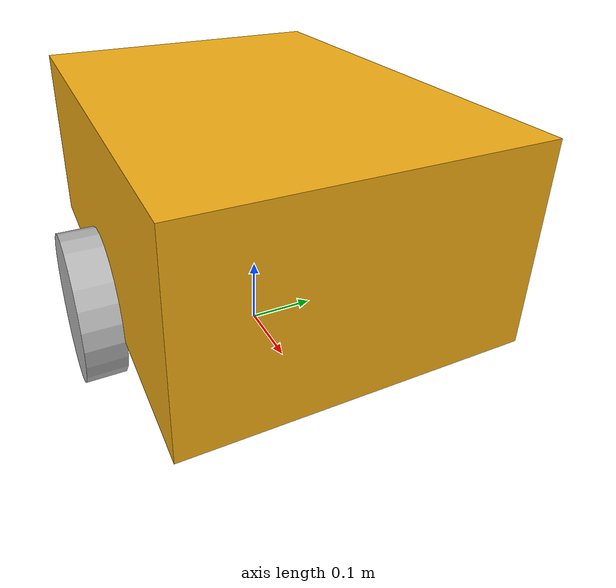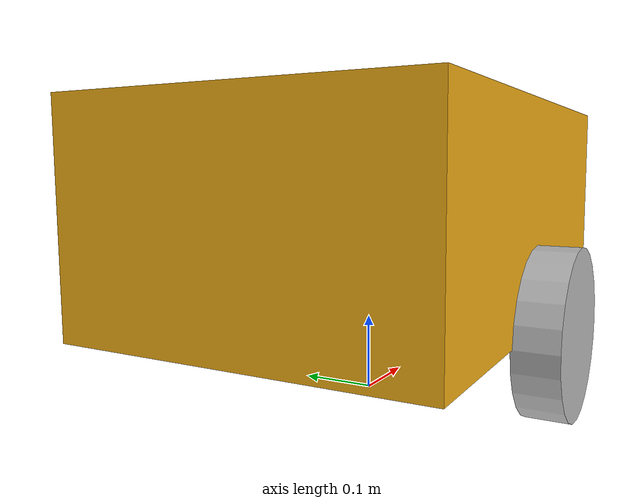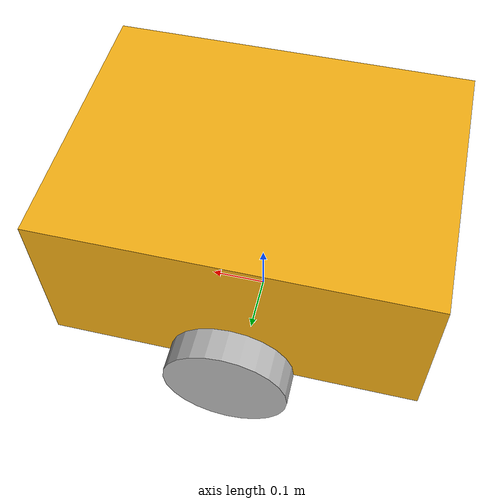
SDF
<?xml version="1.0" ?>
<!-- Gazebo Sim model. Keep sensor and drive plugins here (not in the URDF). -->
<sdf version="1.9"><model name="argus_robot">
  <self_collide>false</self_collide>
  <!-- The chassis bottom is above the ground.  The wheel contacts, rather
       than the body collision, support the robot in the physics world. -->
  <!-- Gazebo uses stable primitive visuals because the supplied STL contains
       no UV/tangent data, which crashes/stalls Ogre2 rendering.  RViz keeps
       using the supplied STL through the URDF. -->
  <link name="base_link"><pose>0 0 0.245 0 0 0</pose><inertial><mass>12</mass><inertia><ixx>0.32</ixx><iyy>0.45</iyy><izz>0.60</izz></inertia></inertial><collision name="body_collision"><geometry><box><size>0.62 0.46 0.28</size></box></geometry></collision><visual name="chassis"><geometry><box><size>0.62 0.46 0.28</size></box></geometry><material><ambient>0.95 0.68 0.08 1</ambient><diffuse>0.95 0.68 0.08 1</diffuse></material></visual>
    <!-- CPU ray sensor avoids the GPU texture-memory stall caused by the
         Gazebo LiDAR visual.  RViz still renders the bridged /scan rays. -->
    <sensor name="lidar" type="ray"><pose>0.18 0 0.20 0 0 0</pose><topic>/scan</topic><always_on>true</always_on><update_rate>10</update_rate><visualize>false</visualize><ray><scan><horizontal><samples>360</samples><resolution>1</resolution><min_angle>-3.14159</min_angle><max_angle>3.14159</max_angle></horizontal></scan><range><min>0.12</min><max>12</max><resolution>0.01</resolution></range></ray></sensor>
    <!-- Keep the RGB feed lightweight enough for an integrated-GPU laptop.
         It remains suitable for a safety/object-detection node. -->
    <sensor name="camera" type="camera"><pose>0.30 0 0.14 0 0 0</pose><topic>/camera/image</topic><always_on>true</always_on><update_rate>5</update_rate><camera><horizontal_fov>1.05</horizontal_fov><image><width>320</width><height>240</height><format>R8G8B8</format></image><clip><near>0.1</near><far>12</far></clip></camera></sensor>
  </link>
  <link name="left_wheel_link"><pose>0 0.255 0.105 1.5708 0 0</pose><inertial><mass>0.7</mass><inertia><ixx>0.004</ixx><iyy>0.002</iyy><izz>0.004</izz></inertia></inertial><collision name="collision"><geometry><cylinder><radius>0.105</radius><length>0.055</length></cylinder></geometry></collision><visual name="visual"><geometry><cylinder><radius>0.105</radius><length>0.055</length></cylinder></geometry></visual></link>
  <joint name="left_wheel_joint" type="revolute"><parent>base_link</parent><child>left_wheel_link</child><axis><xyz>0 1 0</xyz><limit><lower>-1e16</lower><upper>1e16</upper></limit></axis></joint>
  <link name="right_wheel_link"><pose>0 -0.255 0.105 1.5708 0 0</pose><inertial><mass>0.7</mass><inertia><ixx>0.004</ixx><iyy>0.002</iyy><izz>0.004</izz></inertia></inertial><collision name="collision"><geometry><cylinder><radius>0.105</radius><length>0.055</length></cylinder></geometry></collision><visual name="visual"><geometry><cylinder><radius>0.105</radius><length>0.055</length></cylinder></geometry></visual></link>
  <joint name="right_wheel_joint" type="revolute"><parent>base_link</parent><child>right_wheel_link</child><axis><xyz>0 1 0</xyz><limit><lower>-1e16</lower><upper>1e16</upper></limit></axis></joint>
  <plugin filename="gz-sim-diff-drive-system" name="gz::sim::systems::DiffDrive"><left_joint>left_wheel_joint</left_joint><right_joint>right_wheel_joint</right_joint><wheel_separation>0.51</wheel_separation><wheel_radius>0.105</wheel_radius><topic>/cmd_vel</topic><odom_topic>/odom</odom_topic><odom_publish_frequency>30</odom_publish_frequency><frame_id>odom</frame_id><child_frame_id>base_footprint</child_frame_id></plugin>
  <plugin filename="gz-sim-sensors-system" name="gz::sim::systems::Sensors"><render_engine>ogre2</render_engine></plugin>
</model></sdf>
